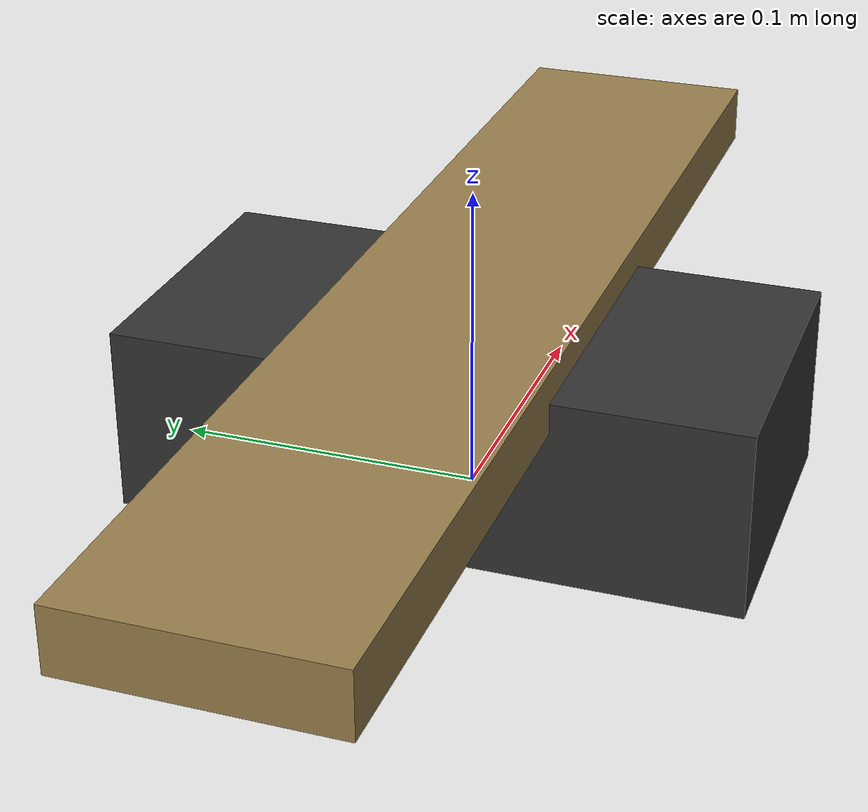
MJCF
<mujoco model="seesaw">
  <asset>
    <texture name="tex_wood" type="2d" builtin="flat" rgb1="0.6 0.5 0.3" width="512" height="512"/>
    <material name="mat_wood" texture="tex_wood"/>
    <texture name="tex_base" type="2d" builtin="flat" rgb1="0.2 0.2 0.2" width="512" height="512"/>
    <material name="mat_base" texture="tex_base"/>
  </asset>
  <worldbody>
    <body>
      <body name="object">
        <!-- 1. 底座 (固定，重) -->
        <geom name="base_geom" type="box" size="0.05 0.1 0.03" pos="0 0 0.03" material="mat_base"
              density="50000" friction="2.0 0.005 0.0001" group="0"/>
        <geom name="base_vis" type="box" size="0.05 0.1 0.03" pos="0 0 0.03" material="mat_base"
              contype="0" conaffinity="0" group="1"/>

        <!-- 2. 跷跷板本体 (Hinge Joint) -->
        <!-- 支点高度在 base_h * 2 处，即 0.12m -->
        <body name="seesaw_board" pos="0 0 0.06">
            <!-- 关键：Hinge 关节，绕 Y 轴旋转，限制角度 +/- 25度 (约0.4弧度) -->
            <!-- damping=1.0 稍微大一点，防止晃个不停 -->
            <joint name="seesaw_joint" type="hinge" axis="0 1 0" range="-0.2 0.2" damping="0.0" frictionloss="0.1" limited="true"/>

            <!-- 板子 -->
            <geom name="board_geom" type="box" size="0.2 0.04 0.01" material="mat_wood"
                  density="800" friction="1.5 0.005 0.0001" group="0"/>
            <geom name="board_vis" type="box" size="0.2 0.04 0.01" material="mat_wood"
                  contype="0" conaffinity="0" group="1"/>

            <!-- 围栏 -->

            <!-- Sites 用于定位 -->
        </body>

        <site name="bottom_site" pos="0 0 -0.01" size="0.002" rgba="0 0 0 0"/>
      </body>
    </body>
  </worldbody>
</mujoco>
